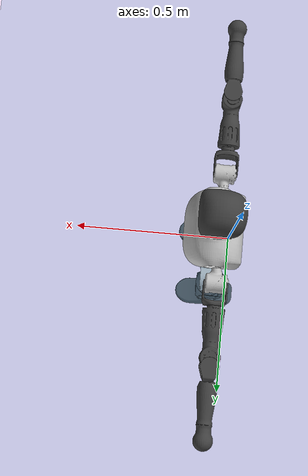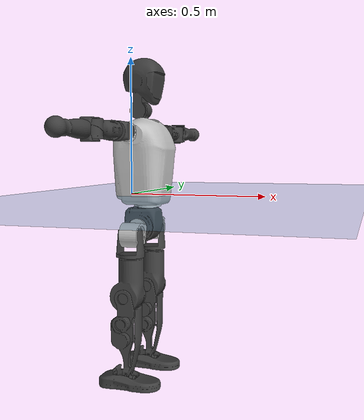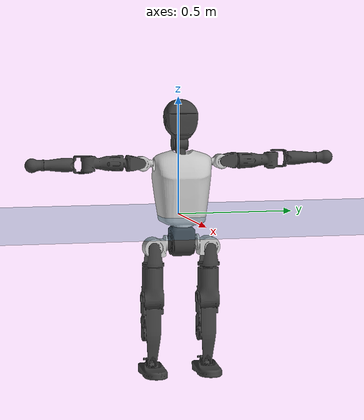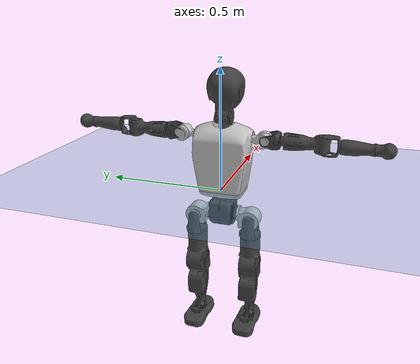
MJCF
<mujoco model="T1">
  <compiler angle="radian" assetdir="assets" balanceinertia="true" inertiafromgeom="false"/>

  <option timestep="0.005" density="1.2" viscosity="2e-05"/>

  <size nkey="1"/>

  <visual>
    <quality shadowsize="8192"/>
    <map shadowclip="0.5"/>
  </visual>

  <default>
    <default class="/">
      <joint armature="0.01" damping="0.01" frictionloss="0.1"/>
      <geom contype="0" conaffinity="0" group="1" solref="-1000 -80"/>
      <site size="0.01 0.005 0.005" group="5"/>
      <general forcelimited="true" biastype="affine" gainprm="25" biasprm="0 -25 -0.6"/>
      <default class="t1">
        <geom rgba="0.25 0.25 0.25 1"/>
        <default class="visual">
          <geom type="mesh" group="2"/>
        </default>
        <default class="collision">
          <geom group="3"/>
        </default>
        <default class="foot">
          <geom size="0.1115 0.05 0.015" type="box" condim="6" group="4" priority="1" solimp="0.015 1 0.015"/>
        </default>
        <default class="reward_collision_sphere">
          <geom group="5" rgba="1 0 0 1"/>
        </default>
      </default>
    </default>
  </default>

  <asset>
    <texture type="skybox" colorspace="auto" name="//unnamed_texture_0" builtin="gradient" rgb1="0.95 0.95 0.95" rgb2="0.95 0.95 0.95" width="100" height="600"/>
    <texture type="2d" colorspace="auto" name="texplane" builtin="checker" rgb1="0.345 0.575 0.748" rgb2="0.345 0.575 0.748" markrgb="1 1 1" width="512" height="512"/>
    <material name="MatPlane" class="/" texture="texplane" texuniform="true" texrepeat="2 2" specular="0.9"/>
    <mesh name="Trunk" class="/" file="Trunk.stl"/>
    <mesh name="H1" class="/" file="H1.stl"/>
    <mesh name="H2" class="/" file="H2.stl"/>
    <mesh name="AL1" class="/" file="AL1.stl"/>
    <mesh name="AL2" class="/" file="AL2.stl"/>
    <mesh name="AL3" class="/" file="AL3.stl"/>
    <mesh name="left_hand_link" class="/" file="left_hand_link.stl"/>
    <mesh name="AR1" class="/" file="AR1.stl"/>
    <mesh name="AR2" class="/" file="AR2.stl"/>
    <mesh name="AR3" class="/" file="AR3.stl"/>
    <mesh name="right_hand_link" class="/" file="right_hand_link.stl"/>
    <mesh name="Waist" class="/" file="Waist.stl"/>
    <mesh name="Hip_Pitch_Left" class="/" file="Hip_Pitch_Left.stl"/>
    <mesh name="Hip_Roll_Left" class="/" file="Hip_Roll_Left.stl"/>
    <mesh name="Hip_Yaw_Left" class="/" file="Hip_Yaw_Left.stl"/>
    <mesh name="Shank_Left" class="/" file="Shank_Left.stl"/>
    <mesh name="Ankle_Cross_Left" class="/" file="Ankle_Cross_Left.stl"/>
    <mesh name="left_foot_link" class="/" file="left_foot_link.stl"/>
    <mesh name="Hip_Pitch_Right" class="/" file="Hip_Pitch_Right.stl"/>
    <mesh name="Hip_Roll_Right" class="/" file="Hip_Roll_Right.stl"/>
    <mesh name="Hip_Yaw_Right" class="/" file="Hip_Yaw_Right.stl"/>
    <mesh name="Shank_Right" class="/" file="Shank_Right.stl"/>
    <mesh name="Ankle_Cross_Right" class="/" file="Ankle_Cross_Right.stl"/>
    <mesh name="right_foot_link" class="/" file="right_foot_link.stl"/>
  </asset>

  <worldbody>
    <geom name="floor" class="/" size="100 100 0.125" type="plane" group="0" material="MatPlane"/>
    <light name="toplight_shadow" class="/" pos="0 0 5" dir="0.0990148 0.0990148 -0.990148" type="directional" ambient="0.04 0.04 0.04" diffuse="0.55 0.55 0.55" specular="0.12 0.12 0.12"/>
    <light name="toplight_fill" class="/" pos="0 0 5" dir="0.0990148 0.0990148 -0.990148" type="directional" castshadow="false" ambient="0.04 0.04 0.04" diffuse="0.3 0.3 0.3" specular="0.08 0.08 0.08"/>
    <body name="trunk" childclass="t1" pos="-0.000693638 0.00316239 -0.000400018" quat="1 0.00036202 -7.6098e-05 -0.000183466">
      <inertial pos="0.0399664 -0.00191802 0.107872" quat="0.999916 0.00831401 -0.00625619 -0.00778641" mass="11.7098" diaginertia="0.0208239 0.159405 0.0636962"/>
      <joint name="//unnamed_joint_0" type="free" armature="0" damping="0" frictionloss="0"/>
      <geom name="//unnamed_geom_1" class="visual" rgba="0.76 0.76 0.76 1" mesh="Trunk"/>
      <geom name="//unnamed_geom_2" class="collision" size="0.073441 0.0979213 0.146882" pos="0.0446364 0 0.122701" type="box"/>
      <geom name="//unnamed_geom_3" class="reward_collision_sphere" size="0.11261" pos="0.0446364 0 0.102251"/>
      <geom name="//unnamed_geom_4" class="reward_collision_sphere" size="0.0146882" pos="0.0446364 0.0995511 0"/>
      <geom name="//unnamed_geom_5" class="reward_collision_sphere" size="0.0146882" pos="0.0446364 -0.0995511 0"/>
      <geom name="//unnamed_geom_6" class="reward_collision_sphere" size="0.0146882" pos="0.0446364 0.125317 0.184052"/>
      <geom name="//unnamed_geom_7" class="reward_collision_sphere" size="0.0146882" pos="0.0446364 -0.125317 0.184052"/>
      <site name="imu" pos="0.00663757 0.0225821 0.00671747" size="0.00979213"/>
      <camera name="track" pos="0 -2.34238 0" quat="0.707107 0.707107 0 0" mode="trackcom"/>
      <camera name="ego_camera" pos="0.0907608 0 0.429454" quat="-0.5 -0.5 0.5 0.5"/>
      <body name="H1" pos="0.0437013 -0.00303454 0.245493" quat="1 0.00014528 7.09974e-05 7.65763e-05">
        <inertial pos="-0.00103708 -0.000763069 0.0577335" quat="0.762658 0.00824102 0.0277721 0.646153" mass="0.418138" diaginertia="5.81898e-05 0.00049325 0.000173943"/>
        <joint name="AAHead_yaw" pos="0 0 0" axis="0.0213878 0.00879144 0.999733" range="-1.53972 1.621" armature="0.00941026" damping="0.0128031" frictionloss="0.107972"/>
        <geom name="//unnamed_geom_8" class="visual" mesh="H1"/>
        <body name="H2" pos="-0.00402136 -0.00271711 0.0607679" quat="0.999999 0.000531659 -0.000389568 -0.000978248">
          <inertial pos="0.00661436 0.00707512 0.101274" quat="0.98799 0.115244 -0.0740887 -0.0714474" mass="0.61488" diaginertia="0.00048993 0.0047619 0.00198496"/>
          <joint name="Head_pitch" pos="0 0 0" axis="-0.01426 -0.999892 -0.00341538" range="-1.27061 0.349169" armature="0.0109207" damping="0" frictionloss="0.0929673"/>
          <geom name="//unnamed_geom_9" class="visual" mesh="H2"/>
          <geom name="//unnamed_geom_10" class="collision" size="0.0783371" pos="0.00743941 0 0.112476"/>
          <geom name="//unnamed_geom_11" class="reward_collision_sphere" size="0.0881292" pos="0.0148788 0 0.102251"/>
        </body>
      </body>
      <body name="AL1" pos="0.0442099 0.125431 0.226517" quat="1 0.000244311 -0.000442714 -0.000380164">
        <inertial pos="0.0014893 0.0542184 0.00573436" quat="0.481815 0.503796 -0.50837 0.505573" mass="0.450355" diaginertia="0.000279113 0.00252145 0.000288348"/>
        <joint name="Left_Shoulder_Pitch" pos="0 0 0" axis="0.0173753 0.999796 0.0103167" stiffness="0.000606784" range="-3.30468 1.20781" armature="0.00875386" damping="0" frictionloss="0.10928"/>
        <geom name="//unnamed_geom_12" class="visual" rgba="0.76 0.76 0.76 1" mesh="AL1"/>
        <body name="AL2" pos="0.000679089 0.0579761 0.00345093" quat="0.999993 0.00132422 -0.000179687 -0.00351041">
          <inertial pos="0.00547363 0.0512923 -0.000666662" quat="0.488291 0.512338 -0.488382 0.510455" mass="0.154191" diaginertia="9.02502e-05 0.000763637 0.000202086"/>
          <joint name="Left_Shoulder_Roll" pos="0 0 0" axis="-0.999407 0.0340443 -0.00511525" stiffness="0.0306802" range="-1.67137 1.70779" armature="0.00940674" damping="0.0385701" frictionloss="0.0752253"/>
          <geom name="//unnamed_geom_13" class="visual" mesh="AL2"/>
          <body name="AL3" pos="-0.00143025 0.0643596 -0.00208411" quat="0.999996 0.000390974 -0.0026283 6.70303e-06">
            <inertial pos="-0.00100279 0.103624 -0.00149126" quat="0.704333 0.709867 0.00124389 -0.0013041" mass="0.874967" diaginertia="0.00296766 0.0268938 0.000751048"/>
            <joint name="Left_Elbow_Pitch" pos="0 0 0" axis="-0.00568881 -0.999871 0.0150278" stiffness="0.0163157" range="-2.40972 2.38927" armature="0.00712292" damping="0.029386" frictionloss="0.0850612"/>
            <geom name="//unnamed_geom_14" class="visual" mesh="AL3"/>
            <geom name="//unnamed_geom_15" class="collision" size="0.0293764 0.073441" pos="0 0.0585595 0" quat="0.707105 0.707108 0 0" type="cylinder"/>
            <geom name="//unnamed_geom_16" class="reward_collision_sphere" size="0.0352517"/>
            <body name="left_hand_link" pos="0.00016657 0.173514 0.00566836" quat="1 0.000501434 0.000501743 0.000502331">
              <inertial pos="-3.00713e-05 0.128697 0.00363592" quat="0.700038 0.714096 -0.00184316 0.00301574" mass="0.305432" diaginertia="0.00186498 0.0174091 0.000247053"/>
              <joint name="Left_Elbow_Yaw" pos="0 0 0" axis="0.00459127 -0.000403627 0.999989" range="-2.45277 0.0175235" armature="0.00890201" damping="0.0168432" frictionloss="0.0938636"/>
              <geom name="//unnamed_geom_17" class="visual" mesh="left_hand_link"/>
              <geom name="//unnamed_geom_18" class="collision" size="0.0293764 0.0856812" pos="0 0.152255 0" quat="0.707105 0.707108 0 0" type="cylinder"/>
              <geom name="//unnamed_geom_19" class="reward_collision_sphere" size="0.0489607"/>
              <geom name="//unnamed_geom_20" class="reward_collision_sphere" size="0.0342725" pos="0 0.128831 0"/>
              <geom name="//unnamed_geom_21" class="reward_collision_sphere" size="0.0342725" pos="0 0.251806 0"/>
            </body>
          </body>
        </body>
      </body>
      <body name="AR1" pos="0.04367 -0.122592 0.22339" quat="1 1.50807e-05 0.000427951 1.07591e-05">
        <inertial pos="0.000417439 -0.048023 -0.00498102" quat="0.504286 0.500236 -0.504149 0.491215" mass="0.496876" diaginertia="0.000331464 0.00284258 0.000325015"/>
        <joint name="Right_Shoulder_Pitch" pos="0 0 0" axis="-0.00379049 -0.999981 0.00491785" stiffness="0.00831096" range="-1.25966 3.31362" armature="0.0103385" damping="0.0148057" frictionloss="0.108643"/>
        <geom name="//unnamed_geom_22" class="visual" rgba="0.76 0.76 0.76 1" mesh="AR1"/>
        <body name="AR2" pos="-0.0031581 -0.0584924 0.0027836" quat="1 0.000412483 0.000269514 0.000569133">
          <inertial pos="0.00334257 -0.04465 0.00569022" quat="0.510974 0.48927 -0.509712 0.489606" mass="0.153056" diaginertia="9.55722e-05 0.000831471 0.000211815"/>
          <joint name="Right_Shoulder_Roll" pos="0 0 0" axis="-0.999867 0.0143715 -0.00765365" range="-1.77037 1.48292" armature="0.00939284" damping="0.0255458" frictionloss="0.0941823"/>
          <geom name="//unnamed_geom_23" class="visual" mesh="AR2"/>
          <body name="AR3" pos="-0.00246121 -0.0727237 0.000889628" quat="0.999999 -0.000421826 0.000112462 -0.00106995">
            <inertial pos="0.00108673 -0.0994446 -0.00209809" quat="0.707223 0.706989 -0.00124413 -0.000347582" mass="0.996258" diaginertia="0.00299655 0.0278792 0.000700238"/>
            <joint name="Right_Elbow_Pitch" pos="0 0 0" axis="-0.00262961 0.999984 -0.00493912" stiffness="0.00563627" range="-2.25642 2.2826" armature="0.00723943" damping="0.00635912" frictionloss="0.121584"/>
            <geom name="//unnamed_geom_24" class="visual" mesh="AR3"/>
            <geom name="//unnamed_geom_25" class="collision" size="0.0293764 0.073441" pos="0 -0.0585595 0" quat="0.707105 0.707108 0 0" type="cylinder"/>
            <geom name="//unnamed_geom_26" class="reward_collision_sphere" size="0.0352517"/>
            <body name="right_hand_link" pos="0.000248867 -0.169483 -0.00282942" quat="1 -0.000289758 -0.000391188 -4.62977e-05">
              <inertial pos="-0.00163216 -0.130163 0.00706724" quat="0.700498 0.713054 -1.87787e-05 0.029261" mass="0.27604" diaginertia="0.00195236 0.0179161 0.00023512"/>
              <joint name="Right_Elbow_Yaw" pos="0 0 0" axis="-0.00541106 -0.000628194 0.999985" stiffness="0.0235488" range="0.0996133 2.31806" armature="0.00888723" damping="0" frictionloss="0.106769"/>
              <geom name="//unnamed_geom_27" class="visual" mesh="right_hand_link"/>
              <geom name="//unnamed_geom_28" class="collision" size="0.0293764 0.0856812" pos="0 -0.152255 0" quat="0.707105 0.707108 0 0" type="cylinder"/>
              <geom name="//unnamed_geom_29" class="reward_collision_sphere" size="0.0489607"/>
              <geom name="//unnamed_geom_30" class="reward_collision_sphere" size="0.0342725" pos="0 -0.128831 0"/>
              <geom name="//unnamed_geom_31" class="reward_collision_sphere" size="0.0342725" pos="0 -0.251806 0"/>
            </body>
          </body>
        </body>
      </body>
      <body name="Waist" pos="0.0466119 0.000268301 -0.115512" quat="1 0.000211719 -0.000154212 0.000245226">
        <inertial pos="0.00504937 0.000281727 0.00726303" quat="0.983824 -0.000972945 -0.179102 0.00345998" mass="2.46624" diaginertia="0.00127397 0.0113837 0.00533932"/>
        <joint name="Waist" pos="0 0 0" axis="-0.0208084 -0.00365482 0.999777" stiffness="0.036509" range="-1.57942 1.53043" armature="0.0101869" damping="0" frictionloss="0.116264"/>
        <geom name="//unnamed_geom_32" class="visual" mesh="Waist"/>
        <body name="Hip_Pitch_Left" pos="-0.00375537 0.119435 -0.0011328" quat="1 0.000473644 0.000175597 -0.000359976">
          <inertial pos="-0.00528761 -0.00851272 -0.014082" quat="0.970048 0.241149 0.0223374 -0.0188459" mass="0.945523" diaginertia="0.000424195 0.00326111 0.0014296"/>
          <joint name="Left_Hip_Pitch" pos="0 0 0" axis="0.00161538 0.999995 0.00260289" range="-1.7891 1.47507" armature="0.00867372" damping="0.0250399" frictionloss="0.0864845"/>
          <geom name="//unnamed_geom_33" class="visual" rgba="0.76 0.76 0.76 1" mesh="Hip_Pitch_Left"/>
          <body name="Hip_Roll_Left" pos="-0.00432637 0.00214663 -0.0253081" quat="0.999999 -0.000276161 0.000210751 -0.000958072">
            <inertial pos="0.0024464 -0.00336663 -0.0556466" quat="0.699524 -0.00619163 -0.00721225 0.714546" mass="0.402657" diaginertia="0.000400723 0.00378612 0.000629033"/>
            <joint name="Left_Hip_Roll" pos="0 0 0" axis="-0.999997 0.00221393 -0.00112821" range="-1.58218 0.207392" armature="0.0105565" damping="0.0173884" frictionloss="0.108298"/>
            <geom name="//unnamed_geom_34" class="visual" mesh="Hip_Roll_Left"/>
            <geom name="//unnamed_geom_35" class="reward_collision_sphere" size="0.0538567"/>
            <body name="Hip_Yaw_Left" pos="-0.000410269 -0.00283106 -0.0866259" quat="1 2.18671e-05 -0.000476046 -5.45626e-06">
              <inertial pos="-0.00576247 -0.000587235 -0.093554" quat="0.69477 -0.0342963 -0.00360313 0.718405" mass="2.1145" diaginertia="0.00592113 0.0574433 0.00286008"/>
              <joint name="Left_Hip_Yaw" pos="0 0 0" axis="-0.0190792 -0.015876 -0.999692" range="-1.01019 1.06186" armature="0.00872619" damping="0.00455866" frictionloss="0.101225"/>
              <geom name="//unnamed_geom_36" class="visual" mesh="Hip_Yaw_Left"/>
              <geom name="//unnamed_geom_37" class="collision" size="0.0489607 0.0783371" type="cylinder"/>
              <body name="Shank_Left" pos="-0.0126798 -0.00462352 -0.133092" quat="0.999999 0.000653812 0.000928462 -0.000708029">
                <inertial pos="-0.00205263 0.00635129 -0.126647" quat="0.997451 0.0031488 -0.0134169 0.0700076" mass="1.59422" diaginertia="0.00709805 0.0761306 0.00186993"/>
                <joint name="Left_Knee_Pitch" pos="0 0 0" axis="-0.0020386 0.999997 -0.00114999" range="-0.00816267 2.33121" armature="0.0105836" damping="0.00675092" frictionloss="0.0615268"/>
                <geom name="//unnamed_geom_38" class="visual" mesh="Shank_Left"/>
                <geom name="//unnamed_geom_39" class="collision" size="0.0489607 0.073441" pos="0 0 -0.122701" type="cylinder"/>
                <geom name="//unnamed_geom_40" class="reward_collision_sphere" size="0.0636489"/>
                <body name="Ankle_Cross_Left" pos="0.00154267 0.00226941 -0.284888" quat="1 6.38515e-06 -2.98616e-06 7.9548e-06">
                  <inertial pos="-0.00422651 -0.00157414 -0.00900662" quat="0.447564 0.557459 0.542683 0.440931" mass="0.0764286" diaginertia="6.93133e-06 6.64433e-05 1.34083e-05"/>
                  <joint name="Left_Ankle_Pitch" pos="0 0 0" axis="-0.000806545 0.999521 0.0309467" stiffness="0.0292673" range="-0.894021 0.307295" armature="0.0100444" damping="0.00725625" frictionloss="0.0974398"/>
                  <geom name="//unnamed_geom_41" class="visual" mesh="Ankle_Cross_Left"/>
                  <body name="left_foot_link" pos="-0.00276064 -0.000597465 -0.0130908" quat="0.999995 -0.00199842 0.00236212 0.000476799">
                    <inertial pos="-0.00533192 0.000797819 -0.0100964" quat="-0.00279927 0.610833 0.0105947 0.791684" mass="0.627807" diaginertia="0.00061307 0.00524156 0.00253574"/>
                    <joint name="Left_Ankle_Roll" pos="0 0 0" axis="-0.999891 0.0124812 0.00785766" range="-0.436109 0.45056" armature="0.00957264" damping="0.0167775" frictionloss="0.102974"/>
                    <geom name="//unnamed_geom_42" class="visual" mesh="left_foot_link"/>
                    <geom name="left_foot" class="foot" size="0.0960483 0.0477327 0.0186819" pos="0.00743941 0 -0.0153376"/>
                    <geom name="//unnamed_geom_44" class="reward_collision_sphere" size="0.0509191" pos="0.00743941 0 -0.0153376"/>
                    <geom name="//unnamed_geom_45" class="reward_collision_sphere" size="0.0293764" pos="0.0706744 -0.0269374 -0.0153376"/>
                    <geom name="//unnamed_geom_46" class="reward_collision_sphere" size="0.0293764" pos="-0.0520758 -0.0269374 -0.0153376"/>
                    <site name="left_foot" class="foot" pos="0.00743941 0 -0.0153376" size="0.00979213"/>
                  </body>
                </body>
              </body>
            </body>
          </body>
        </body>
        <body name="Hip_Pitch_Right" pos="0.00286536 -0.121676 -0.00148245" quat="1 -0.000306803 0.0006965 0.000383962">
          <inertial pos="0.0011799 0.00710269 -0.0217646" quat="0.972046 -0.234595 0.00846744 -0.00439496" mass="0.923028" diaginertia="0.000414558 0.0031414 0.00132808"/>
          <joint name="Right_Hip_Pitch" pos="0 0 0" axis="0.0124743 -0.99991 -0.00503281" stiffness="0.0030956" range="-1.56529 1.75069" armature="0.00880235" damping="0.0165149" frictionloss="0.0868474"/>
          <geom name="//unnamed_geom_47" class="visual" rgba="0.76 0.76 0.76 1" mesh="Hip_Pitch_Right"/>
          <body name="Hip_Roll_Right" pos="-0.00410873 -0.00194222 -0.0205236" quat="1 1.87028e-05 0.00015226 -8.2328e-05">
            <inertial pos="0.00506721 0.000327926 -0.0519457" quat="0.707012 -0.00558263 -0.00707307 0.707144" mass="0.337157" diaginertia="0.000401074 0.00327799 0.00056042"/>
            <joint name="Right_Hip_Roll" pos="0 0 0" axis="-0.999998 -0.00116856 0.00182666" stiffness="0.000874774" range="-0.1818 1.51822" armature="0.00957845" damping="0.00701828" frictionloss="0.0993731"/>
            <geom name="//unnamed_geom_48" class="visual" mesh="Hip_Roll_Right"/>
            <geom name="//unnamed_geom_49" class="reward_collision_sphere" size="0.0538567"/>
            <body name="Hip_Yaw_Right" pos="0.00106986 -0.00238043 -0.0826183" quat="1 0.000396634 0.000487208 -0.000689542">
              <inertial pos="-0.00472105 0.00415616 -0.0970276" quat="0.717925 -0.0416815 -0.0349182 0.693993" mass="1.8979" diaginertia="0.00571997 0.0504488 0.00285519"/>
              <joint name="Right_Hip_Yaw" pos="0 0 0" axis="-0.000709386 0.000205753 -1" range="-1.06621 1.00105" armature="0.0127488" damping="0.00701011" frictionloss="0.0866097"/>
              <geom name="//unnamed_geom_50" class="visual" mesh="Hip_Yaw_Right"/>
              <geom name="//unnamed_geom_51" class="collision" size="0.0489607 0.0783371" type="cylinder"/>
              <body name="Shank_Right" pos="-0.0156035 -0.00204451 -0.137811" quat="1 0.00013608 -7.69587e-05 -0.000173086">
                <inertial pos="-0.010687 -0.00744426 -0.124238" quat="0.999459 0.00367755 -0.0263236 -0.0193651" mass="1.5551" diaginertia="0.00671342 0.0701102 0.00204371"/>
                <joint name="Right_Knee_Pitch" pos="0 0 0" axis="-0.00315068 -0.999587 0.0285706" range="-2.33895 -0.0046862" armature="0.0106929" damping="0.00829711" frictionloss="0.0983004"/>
                <geom name="//unnamed_geom_52" class="visual" mesh="Shank_Right"/>
                <geom name="//unnamed_geom_53" class="collision" size="0.0489607 0.073441" pos="0 0 -0.122701" type="cylinder"/>
                <geom name="//unnamed_geom_54" class="reward_collision_sphere" size="0.0636489"/>
                <body name="Ankle_Cross_Right" pos="-0.000694814 0.00137649 -0.285935" quat="1 -0.000575461 0.000182234 0.000700282">
                  <inertial pos="-0.00161222 -0.000667251 -0.00768487" quat="0.443677 0.550383 0.550715 0.443782" mass="0.0709875" diaginertia="6.4123e-06 5.66132e-05 1.282e-05"/>
                  <joint name="Right_Ankle_Pitch" pos="0 0 0" axis="-0.00547325 -0.999341 -0.0358755" range="-0.3767 0.89736" armature="0.0107671" damping="0.0118264" frictionloss="0.105636"/>
                  <geom name="//unnamed_geom_55" class="visual" mesh="Ankle_Cross_Right"/>
                  <body name="right_foot_link" pos="-0.00102338 0.00319058 -0.0151417" quat="1 8.27289e-06 0.000213085 0.000698796">
                    <inertial pos="-0.00621745 -0.000465683 -0.0107918" quat="-0.00290677 0.613839 0.0101235 0.789361" mass="0.659402" diaginertia="0.000560471 0.00513161 0.00244573"/>
                    <joint name="Right_Ankle_Roll" pos="0 0 0" axis="-0.999857 0.0147818 -0.00818818" range="-0.439071 0.419432" armature="0.0103185" damping="0.00366118" frictionloss="0.123655"/>
                    <geom name="//unnamed_geom_56" class="visual" mesh="right_foot_link"/>
                    <geom name="right_foot" class="foot" size="0.0989006 0.045765 0.0154164" pos="0.00743941 0 -0.0153376"/>
                    <geom name="//unnamed_geom_58" class="reward_collision_sphere" size="0.0391685"/>
                    <geom name="//unnamed_geom_59" class="reward_collision_sphere" size="0.0293764" pos="0.00743941 0 -0.0153376"/>
                    <geom name="//unnamed_geom_60" class="reward_collision_sphere" size="0.0293764" pos="0.0706744 0.0269374 -0.0153376"/>
                    <geom name="//unnamed_geom_61" class="reward_collision_sphere" size="0.0293764" pos="-0.0520758 0.0269374 -0.0153376"/>
                    <site name="right_foot" class="foot" pos="0.00743941 0 -0.0153376" size="0.00979213"/>
                  </body>
                </body>
              </body>
            </body>
          </body>
        </body>
      </body>
    </body>
  </worldbody>

  <contact>
    <pair class="/" geom1="floor" geom2="left_foot" name="//unnamed_contact_0"/>
    <pair class="/" geom1="floor" geom2="right_foot" name="//unnamed_contact_1"/>
  </contact>

  <actuator>
    <general name="AAHead_yaw" class="/" joint="AAHead_yaw" forcerange="-7.98312 7.98312" gainprm="23.1368" biasprm="0 -23.1368 -0.629133"/>
    <general name="Head_pitch" class="/" joint="Head_pitch" forcerange="-7.1294 7.1294" gainprm="23.1368" biasprm="0 -23.1368 -0.629133"/>
    <general name="Left_Shoulder_Pitch" class="/" joint="Left_Shoulder_Pitch" forcerange="-18.0019 18.0019" gainprm="23.1368" biasprm="0 -23.1368 -0.629133"/>
    <general name="Left_Shoulder_Roll" class="/" joint="Left_Shoulder_Roll" forcerange="-17.9375 17.9375" gainprm="23.1368" biasprm="0 -23.1368 -0.629133"/>
    <general name="Left_Elbow_Pitch" class="/" joint="Left_Elbow_Pitch" forcerange="-15.7312 15.7312" gainprm="23.1368" biasprm="0 -23.1368 -0.629133"/>
    <general name="Left_Elbow_Yaw" class="/" joint="Left_Elbow_Yaw" forcerange="-13.4569 13.4569" gainprm="23.1368" biasprm="0 -23.1368 -0.629133"/>
    <general name="Right_Shoulder_Pitch" class="/" joint="Right_Shoulder_Pitch" forcerange="-17.6323 17.6323" gainprm="23.1368" biasprm="0 -23.1368 -0.629133"/>
    <general name="Right_Shoulder_Roll" class="/" joint="Right_Shoulder_Roll" forcerange="-15.6812 15.6812" gainprm="23.1368" biasprm="0 -23.1368 -0.629133"/>
    <general name="Right_Elbow_Pitch" class="/" joint="Right_Elbow_Pitch" forcerange="-16.891 16.891" gainprm="23.1368" biasprm="0 -23.1368 -0.629133"/>
    <general name="Right_Elbow_Yaw" class="/" joint="Right_Elbow_Yaw" forcerange="-19.2254 19.2254" gainprm="23.1368" biasprm="0 -23.1368 -0.629133"/>
    <general name="Waist" class="/" joint="Waist" forcerange="-29.5882 29.5882" gainprm="23.1368" biasprm="0 -23.1368 -0.629133"/>
    <general name="Left_Hip_Pitch" class="/" joint="Left_Hip_Pitch" forcerange="-42.6148 42.6148" gainprm="23.1368" biasprm="0 -23.1368 -0.629133"/>
    <general name="Left_Hip_Roll" class="/" joint="Left_Hip_Roll" forcerange="-26.8675 26.8675" gainprm="23.1368" biasprm="0 -23.1368 -0.629133"/>
    <general name="Left_Hip_Yaw" class="/" joint="Left_Hip_Yaw" forcerange="-31.0901 31.0901" gainprm="23.1368" biasprm="0 -23.1368 -0.629133"/>
    <general name="Left_Knee_Pitch" class="/" joint="Left_Knee_Pitch" forcerange="-58.0082 58.0082" gainprm="23.1368" biasprm="0 -23.1368 -0.629133"/>
    <general name="Left_Ankle_Pitch" class="/" joint="Left_Ankle_Pitch" forcerange="-20.992 20.992" gainprm="23.1368" biasprm="0 -23.1368 -0.629133"/>
    <general name="Left_Ankle_Roll" class="/" joint="Left_Ankle_Roll" forcerange="-14.6796 14.6796" gainprm="23.1368" biasprm="0 -23.1368 -0.629133"/>
    <general name="Right_Hip_Pitch" class="/" joint="Right_Hip_Pitch" forcerange="-41.1309 41.1309" gainprm="23.1368" biasprm="0 -23.1368 -0.629133"/>
    <general name="Right_Hip_Roll" class="/" joint="Right_Hip_Roll" forcerange="-29.2021 29.2021" gainprm="23.1368" biasprm="0 -23.1368 -0.629133"/>
    <general name="Right_Hip_Yaw" class="/" joint="Right_Hip_Yaw" forcerange="-31.1158 31.1158" gainprm="23.1368" biasprm="0 -23.1368 -0.629133"/>
    <general name="Right_Knee_Pitch" class="/" joint="Right_Knee_Pitch" forcerange="-58.7418 58.7418" gainprm="23.1368" biasprm="0 -23.1368 -0.629133"/>
    <general name="Right_Ankle_Pitch" class="/" joint="Right_Ankle_Pitch" forcerange="-21.661 21.661" gainprm="23.1368" biasprm="0 -23.1368 -0.629133"/>
    <general name="Right_Ankle_Roll" class="/" joint="Right_Ankle_Roll" forcerange="-14.1466 14.1466" gainprm="23.1368" biasprm="0 -23.1368 -0.629133"/>
  </actuator>

  <sensor>
    <gyro site="imu" name="imu_angular_velocity"/>
    <velocimeter site="imu" name="imu_linear_velocity"/>
    <framelinvel objtype="site" objname="left_foot" name="left_foot_global_linear_velocity"/>
    <framelinvel objtype="site" objname="right_foot" name="right_foot_global_linear_velocity"/>
  </sensor>

  <keyframe>
    <key name="home" qpos="0 0 0.6385 1 0 0 0 0 0 0 1.4 0 -0.4 0 -1.4 0 0.4 0 -0.4 0 0 0.8 -0.4 0 0.4 0 0 -0.8 0.4 0"/>
  </keyframe>
</mujoco>
